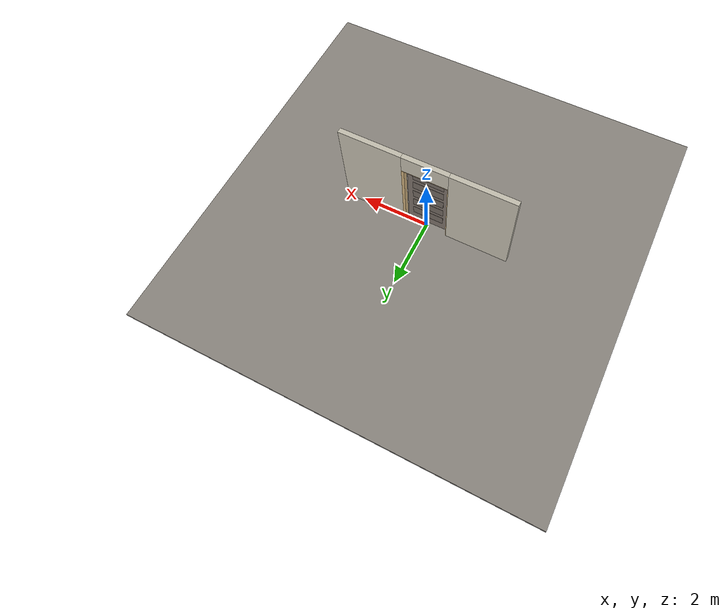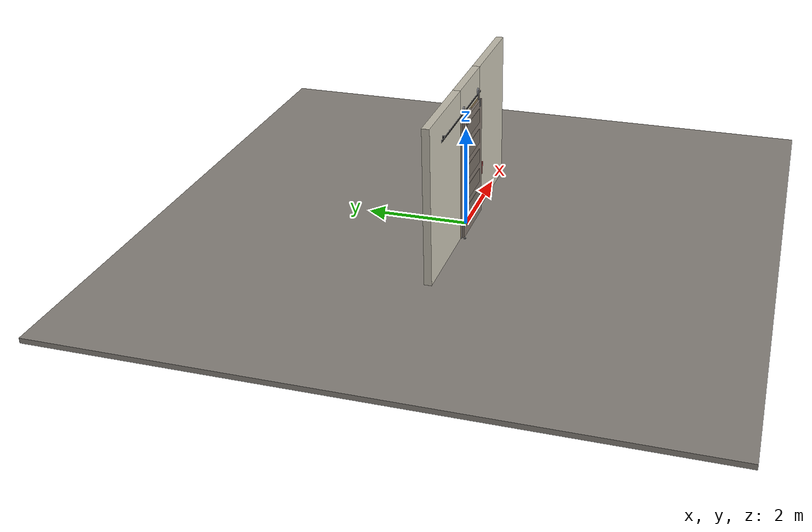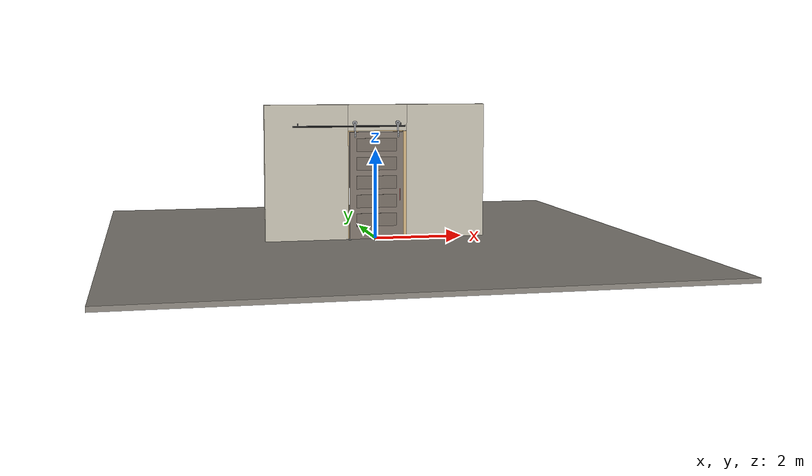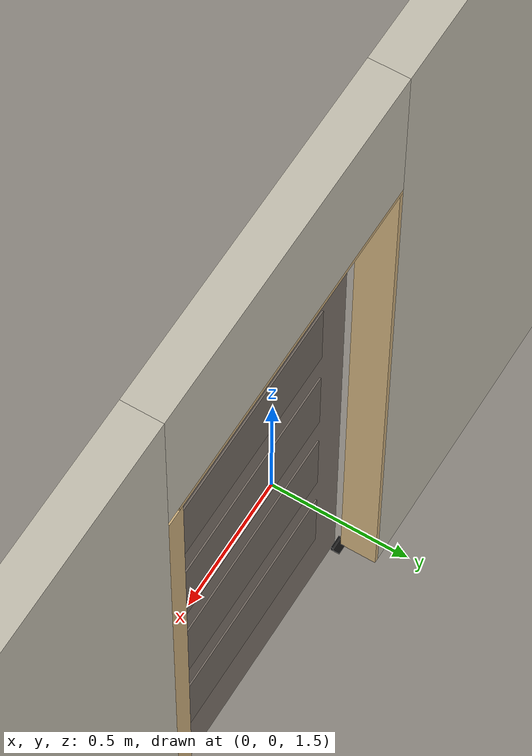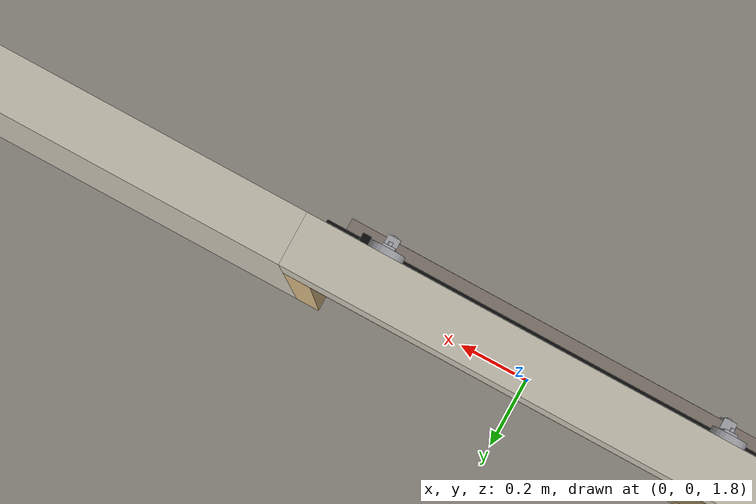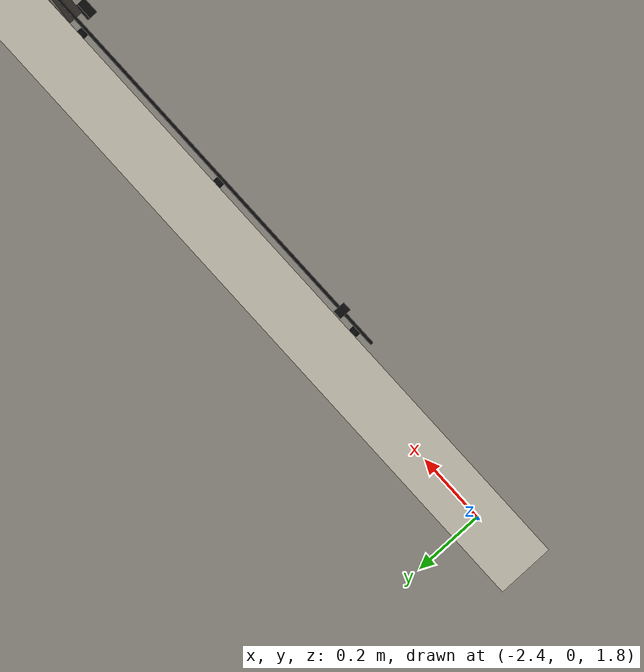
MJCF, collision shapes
<?xml version="1.0" ?>
<mujoco model="db0029_sliding_single_full">
  <compiler angle="radian" meshdir="../../hardware" texturedir="../../textures" autolimits="true" inertiafromgeom="false"/>
  <option timestep="0.002" integrator="implicitfast" cone="elliptic" impratio="10" noslip_iterations="3">
    <flag multiccd="enable"/>
  </option>
  <size memory="16M"/>
  <default>
    <geom condim="4" solref="0.005 1" solimp="0.95 0.99 0.001"/>
    <joint solreflimit="0.005 1" solimplimit="0.95 0.99 0.001"/>
    <tendon solreflimit="0.005 1"/>
    <equality solref="0.002 1"/>
  </default>
  <visual>
    <headlight ambient="0.4 0.4 0.4" diffuse="0.7 0.7 0.7" specular="0.2 0.2 0.2"/>
    <quality shadowsize="4096"/>
    <map znear="0.01" zfar="60"/>
  </visual>
  <asset>
    <mesh name="pull_2b47e55ff8" file="pull_2b47e55ff8.obj"/>
    <material name="mat_floor" rgba="0.55 0.53 0.5 1" specular="0.2" shininess="0.15" reflectance="0"/>
    <material name="mat_wall" rgba="0.78 0.76 0.7 1" specular="0.2" shininess="0.1" reflectance="0"/>
    <material name="mat_frame" rgba="0.82 0.7 0.5 1" specular="0.2" shininess="0.45" reflectance="0"/>
    <material name="mat_track" rgba="0.05 0.05 0.05 1" specular="0.38" shininess="0.3" reflectance="0.12"/>
    <material name="mat_leaf" rgba="0.5 0.46 0.425 1" specular="0.2" shininess="0.15" reflectance="0"/>
    <material name="mat_leaf_panel" rgba="0.46 0.423 0.391 1" specular="0.2" shininess="0.15" reflectance="0"/>
    <material name="mat_roller" rgba="0.65 0.66 0.68 1" specular="0.74" shininess="0.5" reflectance="0.36"/>
    <material name="mat_op_black_matte_metal" rgba="0.05 0.05 0.05 1" specular="0.38" shininess="0.3" reflectance="0.12"/>
    <material name="mat_hook" rgba="0.75 0.76 0.77 1" specular="0.8" shininess="0.65" reflectance="0.4"/>
    <texture name="skybox" type="skybox" builtin="gradient" rgb1="0.6 0.7 0.85" rgb2="0.9 0.92 0.95" width="256" height="256"/>
  </asset>
  <worldbody>
    <light name="sun" pos="1.5 -2.5 4" dir="-0.3 0.5 -0.8" directional="true" diffuse="0.8 0.8 0.8" specular="0.3 0.3 0.3" castshadow="true"/>
    <light name="fill" pos="-1.5 2.5 3" dir="0.3 -0.5 -0.7" directional="true" diffuse="0.35 0.35 0.4" castshadow="false"/>
    <camera name="robot_view" pos="0 -2.89375 2.02025" xyaxes="1 0 0 0 0.26963 0.962964" fovy="52"/>
    <camera name="far_view" pos="0 2.89375 2.02025" xyaxes="-1 0 0 0 -0.26963 0.962964" fovy="52"/>
    <camera name="iso" pos="2.19925 -2.43075 2.48325" xyaxes="0.741536 0.670913 0 -0.242917 0.268487 0.932151" fovy="46"/>
    <camera name="detail_handle" pos="0.6995 -0.9815 1.28" xyaxes="0.97561 0.219512 0 -0.070934 0.315262 0.94635" fovy="38"/>
    <geom name="floor" type="box" size="6 6 0.05" pos="0 0 -0.05" material="mat_floor" group="0" contype="1" conaffinity="1" friction="0.8 0.005 0.0001" density="2400"/>
    <geom name="wall_left" type="box" size="0.93075 0.0725 1.51" pos="-1.56925 0 1.51" material="mat_wall" group="0" contype="1" conaffinity="1" friction="0.6 0.005 0.0001" density="800"/>
    <geom name="wall_right" type="box" size="0.90075 0.0725 1.51" pos="1.59925 0 1.51" material="mat_wall" group="0" contype="1" conaffinity="1" friction="0.6 0.005 0.0001" density="800"/>
    <geom name="wall_header" type="box" size="0.6685 0.0725 0.2905" pos="0.03 0 2.7295" material="mat_wall" group="0" contype="1" conaffinity="1" friction="0.6 0.005 0.0001" density="800"/>
    <geom name="jamb_l" type="box" size="0.0095 0.0725 1.21" pos="-0.629 0 1.21" material="mat_frame" group="0" contype="1" conaffinity="1" friction="0.6 0.005 0.0001" density="300"/>
    <geom name="jamb_head" type="box" size="0.6385 0.0725 0.0095" pos="0 0 2.4295" material="mat_frame" group="0" contype="1" conaffinity="1" friction="0.6 0.005 0.0001" density="300"/>
    <geom name="flat_track" type="box" size="1.269 0.004 0.02" pos="-0.6095 -0.0945 2.54" material="mat_track" group="0" contype="1" conaffinity="1" friction="0.6 0.005 0.0001" density="7850"/>
    <geom name="track_standoff_0" type="cylinder" size="0.012 0.009" pos="-1.8285 -0.0815 2.54" quat="0.707107 -0.707107 0 0" material="mat_track" group="1" contype="0" conaffinity="0" density="7850"/>
    <geom name="track_standoff_1" type="cylinder" size="0.012 0.009" pos="-1.3409 -0.0815 2.54" quat="0.707107 -0.707107 0 0" material="mat_track" group="1" contype="0" conaffinity="0" density="7850"/>
    <geom name="track_standoff_2" type="cylinder" size="0.012 0.009" pos="-0.8533 -0.0815 2.54" quat="0.707107 -0.707107 0 0" material="mat_track" group="1" contype="0" conaffinity="0" density="7850"/>
    <geom name="track_standoff_3" type="cylinder" size="0.012 0.009" pos="-0.3657 -0.0815 2.54" quat="0.707107 -0.707107 0 0" material="mat_track" group="1" contype="0" conaffinity="0" density="7850"/>
    <geom name="track_standoff_4" type="cylinder" size="0.012 0.009" pos="0.1219 -0.0815 2.54" quat="0.707107 -0.707107 0 0" material="mat_track" group="1" contype="0" conaffinity="0" density="7850"/>
    <geom name="track_standoff_5" type="cylinder" size="0.012 0.009" pos="0.6095 -0.0815 2.54" quat="0.707107 -0.707107 0 0" material="mat_track" group="1" contype="0" conaffinity="0" density="7850"/>
    <geom name="leaf_track_stop_l" type="box" size="0.012 0.016 0.027" pos="-1.7705 -0.0945 2.585" material="mat_track" group="0" contype="1" conaffinity="1" friction="0.6 0.005 0.0001" density="7850"/>
    <geom name="leaf_track_stop_r" type="box" size="0.012 0.016 0.027" pos="0.5515 -0.0945 2.585" material="mat_track" group="0" contype="1" conaffinity="1" friction="0.6 0.005 0.0001" density="7850"/>
    <geom name="jamb_latch_0" type="box" size="0.0395 0.0725 1.21" pos="0.659 0 1.21" material="mat_frame" group="0" contype="1" conaffinity="1" friction="0.6 0.005 0.0001" density="300"/>
    <geom name="floor_guide_n" type="box" size="0.028 0.004 0.009" pos="-0.6095 -0.1415 0.009" material="mat_track" group="0" contype="1" conaffinity="1" friction="0.6 0.005 0.0001" density="7850"/>
    <geom name="floor_guide_n_foot" type="box" size="0.028 0.018 0.002" pos="-0.6095 -0.1555 0.002" material="mat_track" group="0" contype="1" conaffinity="1" friction="0.6 0.005 0.0001" density="7850"/>
    <geom name="floor_guide_p" type="box" size="0.028 0.004 0.009" pos="-0.6095 -0.0875 0.009" material="mat_track" group="0" contype="1" conaffinity="1" friction="0.6 0.005 0.0001" density="7850"/>
    <geom name="floor_guide_p_foot" type="box" size="0.028 0.018 0.002" pos="-0.6095 -0.0735 0.002" material="mat_track" group="0" contype="1" conaffinity="1" friction="0.6 0.005 0.0001" density="7850"/>
    <site name="approach_point" pos="0 -1.5 0" quat="1 0 0 0" size="0.05" rgba="0.2 0.9 0.2 0.5" group="4"/>
    <site name="goal_point" pos="0 1.5 0" quat="1 0 0 0" size="0.05" rgba="0.2 0.9 0.2 0.5" group="4"/>
    <site name="door_plane_center" pos="0 0 1.21" quat="1 0 0 0" size="0.02" rgba="0.2 0.9 0.2 0.5" group="4"/>
    <body name="leaf" pos="0 -0.1145 0">
      <inertial pos="0.003857 0.00009 1.295716" mass="62.488672" quat="-0.498491 0.500153 0.500651 0.500702" diaginertia="8.280277966 34.603951522 42.859200882"/>
      <joint name="leaf_slide" type="slide" axis="-1 0 0" limited="true" range="0 1.219" damping="5.124434" frictionloss="95.597508" armature="0.5"/>
      <geom name="leaf_slab" type="box" size="0.6095 0.022 1.2" pos="0 0 1.212" material="mat_leaf" group="0" contype="1" conaffinity="1" friction="0.45 0.005 0.0001" density="1"/>
      <geom name="leaf_panel_0_n" type="box" size="0.45541 0.003 0.1456" pos="0 -0.025 0.4416" material="mat_leaf_panel" group="1" contype="0" conaffinity="0" density="1"/>
      <geom name="leaf_panel_0_p" type="box" size="0.45541 0.003 0.1456" pos="0 0.025 0.4416" material="mat_leaf_panel" group="1" contype="0" conaffinity="0" density="1"/>
      <geom name="leaf_panel_1_n" type="box" size="0.45541 0.003 0.1456" pos="0 -0.025 0.8628" material="mat_leaf_panel" group="1" contype="0" conaffinity="0" density="1"/>
      <geom name="leaf_panel_1_p" type="box" size="0.45541 0.003 0.1456" pos="0 0.025 0.8628" material="mat_leaf_panel" group="1" contype="0" conaffinity="0" density="1"/>
      <geom name="leaf_panel_2_n" type="box" size="0.45541 0.003 0.1456" pos="0 -0.025 1.284" material="mat_leaf_panel" group="1" contype="0" conaffinity="0" density="1"/>
      <geom name="leaf_panel_2_p" type="box" size="0.45541 0.003 0.1456" pos="0 0.025 1.284" material="mat_leaf_panel" group="1" contype="0" conaffinity="0" density="1"/>
      <geom name="leaf_panel_3_n" type="box" size="0.45541 0.003 0.1456" pos="0 -0.025 1.7052" material="mat_leaf_panel" group="1" contype="0" conaffinity="0" density="1"/>
      <geom name="leaf_panel_3_p" type="box" size="0.45541 0.003 0.1456" pos="0 0.025 1.7052" material="mat_leaf_panel" group="1" contype="0" conaffinity="0" density="1"/>
      <geom name="leaf_panel_4_n" type="box" size="0.45541 0.003 0.1456" pos="0 -0.025 2.1264" material="mat_leaf_panel" group="1" contype="0" conaffinity="0" density="1"/>
      <geom name="leaf_panel_4_p" type="box" size="0.45541 0.003 0.1456" pos="0 0.025 2.1264" material="mat_leaf_panel" group="1" contype="0" conaffinity="0" density="1"/>
      <geom name="leaf_hanger_wheel_0" type="cylinder" size="0.05 0.01" pos="-0.4895 0.02 2.61" quat="0.707107 -0.707107 0 0" material="mat_roller" group="1" contype="0" conaffinity="0" density="7850"/>
      <geom name="leaf_hanger_mount_0" type="box" size="0.018 0.004 0.0725" pos="-0.4895 -0.026 2.3645" material="mat_roller" group="1" contype="0" conaffinity="0" density="7850"/>
      <geom name="leaf_hanger_strap_0" type="box" size="0.018 0.004 0.0925" pos="-0.4895 0.006 2.5295" material="mat_roller" group="1" contype="0" conaffinity="0" density="7850"/>
      <geom name="leaf_hanger_bend_0" type="box" size="0.018 0.02 0.004" pos="-0.4895 -0.01 2.437" material="mat_roller" group="1" contype="0" conaffinity="0" density="7850"/>
      <geom name="leaf_hanger_axle_0" type="cylinder" size="0.006 0.021" pos="-0.4895 0.013 2.61" quat="0.707107 -0.707107 0 0" material="mat_roller" group="1" contype="0" conaffinity="0" density="7850"/>
      <geom name="leaf_hanger_bolt_0_90" type="cylinder" size="0.007 0.004" pos="-0.4895 -0.032 2.322" quat="0.707107 -0.707107 0 0" material="mat_roller" group="1" contype="0" conaffinity="0" density="7850"/>
      <geom name="leaf_hanger_bolt_0_45" type="cylinder" size="0.007 0.004" pos="-0.4895 -0.032 2.367" quat="0.707107 -0.707107 0 0" material="mat_roller" group="1" contype="0" conaffinity="0" density="7850"/>
      <geom name="leaf_hanger_wheel_1" type="cylinder" size="0.05 0.01" pos="0.4895 0.02 2.61" quat="0.707107 -0.707107 0 0" material="mat_roller" group="1" contype="0" conaffinity="0" density="7850"/>
      <geom name="leaf_hanger_mount_1" type="box" size="0.018 0.004 0.0725" pos="0.4895 -0.026 2.3645" material="mat_roller" group="1" contype="0" conaffinity="0" density="7850"/>
      <geom name="leaf_hanger_strap_1" type="box" size="0.018 0.004 0.0925" pos="0.4895 0.006 2.5295" material="mat_roller" group="1" contype="0" conaffinity="0" density="7850"/>
      <geom name="leaf_hanger_bend_1" type="box" size="0.018 0.02 0.004" pos="0.4895 -0.01 2.437" material="mat_roller" group="1" contype="0" conaffinity="0" density="7850"/>
      <geom name="leaf_hanger_axle_1" type="cylinder" size="0.006 0.021" pos="0.4895 0.013 2.61" quat="0.707107 -0.707107 0 0" material="mat_roller" group="1" contype="0" conaffinity="0" density="7850"/>
      <geom name="leaf_hanger_bolt_1_90" type="cylinder" size="0.007 0.004" pos="0.4895 -0.032 2.322" quat="0.707107 -0.707107 0 0" material="mat_roller" group="1" contype="0" conaffinity="0" density="7850"/>
      <geom name="leaf_hanger_bolt_1_45" type="cylinder" size="0.007 0.004" pos="0.4895 -0.032 2.367" quat="0.707107 -0.707107 0 0" material="mat_roller" group="1" contype="0" conaffinity="0" density="7850"/>
      <geom name="leaf_pull_n" type="mesh" mesh="pull_2b47e55ff8" pos="0.5195 -0.022 1" quat="0.707107 0.707107 0 0" material="mat_op_black_matte_metal" group="1" contype="0" conaffinity="0" density="3000"/>
      <geom name="leaf_pull_col_n" type="capsule" size="0.006 0.13" pos="0.5195 -0.067 1" material="mat_op_black_matte_metal" group="3" contype="1" conaffinity="1" rgba="0.8 0.3 0.3 0.25" friction="0.7 0.01 0.0001" density="3000"/>
      <site name="leaf_pull_grip_n" pos="0.5195 -0.067 1" quat="1 0 0 0" size="0.012" rgba="0.2 0.9 0.2 0.5" group="4"/>
      <site name="leaf_edge_mid" pos="0.6095 0 1.212" quat="1 0 0 0" size="0.02" rgba="0.2 0.9 0.2 0.5" group="4"/>
    </body>
  </worldbody>
  <sensor>
    <jointpos name="leaf_slide_pos" joint="leaf_slide"/>
    <jointvel name="leaf_slide_vel" joint="leaf_slide"/>
  </sensor>
</mujoco>
